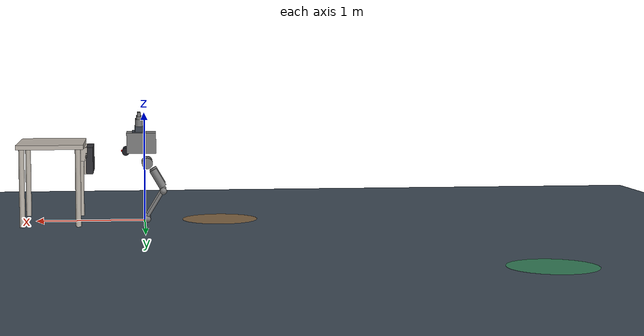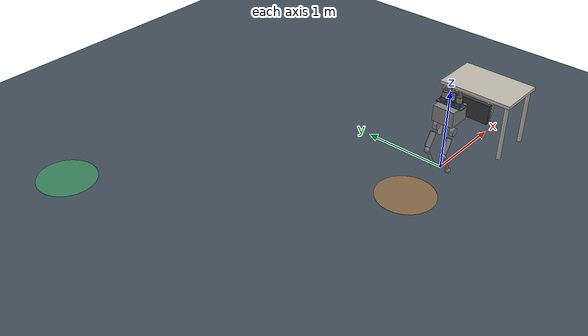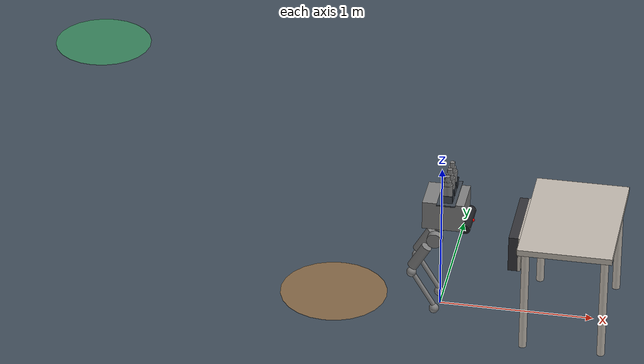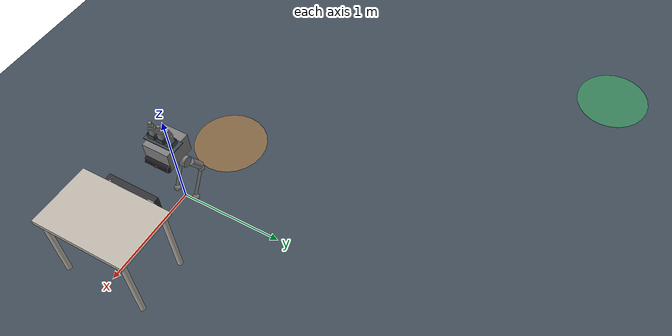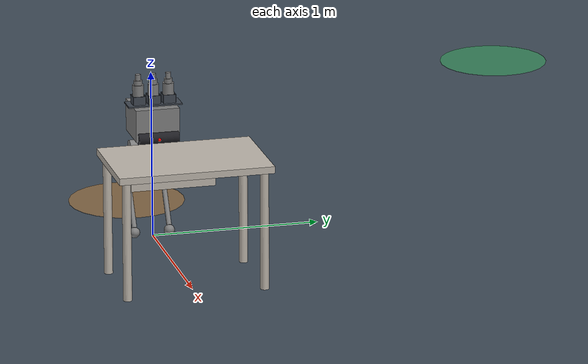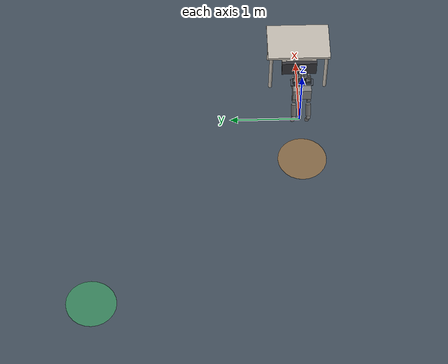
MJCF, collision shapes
<mujoco model="phase01_u02_unit_tron1_payload">

  <!-- 1. 컴파일러 설정: 각도 라디안, STL 및 OBJ 메쉬 경로 탐색 -->
  <compiler angle="radian" coordinate="local" meshdir="../model_ori/PF_TRON1A/meshes/" autolimits="true"/>

  <size njmax="1500" nconmax="400"/>

  <!-- 2. 전역 물리 옵션 (dt=0.001s, 고속 안정 적분기, 타원 마찰 원뿔) -->
  <option timestep="0.001" gravity="0 0 -9.81" integrator="implicitfast" cone="elliptic">
    <flag contact="enable"/>
  </option>

  <!-- 3. 뷰어 및 시각화 기본 설정 -->
  <visual>
    <global offwidth="640" offheight="480" azimuth="135" elevation="-20"/>
    <quality shadowsize="2048" offsamples="4"/>
    <rgba com="0.2 0.8 0.2 0.6" contactforce="0.8 0.2 0.2 0.8"/>
    <scale com="0.1" forcewidth="0.04" contactwidth="0.08"/>
  </visual>

  <!-- 4. 공통 에셋 (텍스처, 재질, 3D 메쉬) -->
  <asset>
    <!-- 하늘 배경 및 바닥 격자 체크 텍스처 -->
    <texture type="skybox" builtin="gradient" rgb1="0.3 0.5 0.7" rgb2="0 0 0" width="512" height="512"/>
    <texture name="texplane" type="2d" builtin="checker" rgb1="0.2 0.25 0.3" rgb2="0.3 0.35 0.4"
             width="512" height="512" mark="cross" markrgb="0.8 0.8 0.8"/>
    <material name="matplane" texture="texplane" texrepeat="5 5" texuniform="true" reflectance="0.1"/>

    <!-- Tron1 STL 메쉬 에셋 -->
    <mesh name="base_Link" file="base_Link.STL"/>
    <mesh name="abad_L_Link" file="abad_L_Link.STL"/>
    <mesh name="hip_L_Link" file="hip_L_Link.STL"/>
    <mesh name="knee_L_Link" file="knee_L_Link.STL"/>
    <mesh name="foot_L_Link" file="foot_L_Link.STL"/>
    <mesh name="abad_R_Link" file="abad_R_Link.STL"/>
    <mesh name="hip_R_Link" file="hip_R_Link.STL"/>
    <mesh name="knee_R_Link" file="knee_R_Link.STL"/>
    <mesh name="foot_R_Link" file="foot_R_Link.STL"/>

    <!-- 물병 3D 메쉬 에셋 (OBJ) -->
    <mesh name="bottle_mesh" file="../../bottle/bottle.obj"/>

    <!-- 재질 정의 -->
    <material name="robot_body_mat" rgba="0.82 0.85 0.90 1.0" specular="0.6" shininess="0.4"/>
    <material name="robot_dark_mat" rgba="0.2 0.2 0.22 1.0" specular="0.4" shininess="0.3"/>
    <material name="tray_mat" rgba="0.25 0.28 0.32 1.0" specular="0.5" shininess="0.4"/>
    <material name="bumper_mat" rgba="0.12 0.12 0.14 1.0" specular="0.2" shininess="0.1"/>
    <material name="table_mat" rgba="0.75 0.72 0.68 1.0" specular="0.3" shininess="0.2"/>
    <material name="ledge_mat" rgba="0.2 0.2 0.22 1.0" specular="0.4" shininess="0.3"/>

    <!-- 물병 색상 (식별을 위한 미세 색상 차이 부여) -->
    <material name="bottle_mat_1" rgba="0.3 0.6 0.9 0.85" specular="0.7" shininess="0.6"/> <!-- Slot L: Blue -->
    <material name="bottle_mat_2" rgba="0.3 0.85 0.5 0.85" specular="0.7" shininess="0.6"/> <!-- Slot C: Green -->
    <material name="bottle_mat_3" rgba="0.95 0.6 0.2 0.85" specular="0.7" shininess="0.6"/> <!-- Slot R: Orange -->
  </asset>

  <!-- 5. 기본 충돌/시각 클래스 정의 -->
  <default>
    <default class="visual">
      <geom contype="0" conaffinity="0" group="2" type="mesh"/>
    </default>
    <default class="collision">
      <geom contype="1" conaffinity="1" condim="3" group="3" friction="1.0 0.005 0.0001"/>
    </default>
    <!-- 외형 시각화 및 물리 충돌을 동시에 수행하는 프롭용 클래스 (Group 0: 기본 뷰어 렌더링) -->
    <default class="prop_geom">
      <geom contype="1" conaffinity="1" condim="3" group="0" friction="1.0 0.005 0.0001"/>
    </default>
    <default class="bottle_collision">
      <geom contype="1" conaffinity="1" condim="4" group="3" friction="1.2 0.005 0.0001"/>
    </default>
    <default class="bumper_collision">
      <geom contype="1" conaffinity="1" condim="3" friction="1.5 0.01 0.001"
            solref="0.04 1" solimp="0.8 0.95 0.001 0.5 2"/>
    </default>
    <joint armature="0.02" damping="0.05" limited="true"/>
  </default>

  <!-- 6. 월드 바디: 조명, 바닥, 도킹 테이블, Tron1 및 물병 -->
  <worldbody>
    <!-- 광원 -->
    <light directional="true" pos="0 0 5" dir="0 0 -1" diffuse="0.8 0.8 0.8" castshadow="true"/>
    <light directional="false" pos="3 -3 3" dir="-1 1 -1" diffuse="0.4 0.4 0.4"/>

    <!-- 기준 바닥 평면 -->
    <geom name="floor" type="plane" size="0 0 0.05" material="matplane"
          contype="1" conaffinity="1" friction="1.0 0.005 0.02" condim="6"/>

    <!-- 카메라 시점 -->
    <camera name="overview_cam" pos="2.4 -2.6 1.8" xyaxes="0.75 0.66 0.0 -0.25 0.28 0.92" fovy="45"/>
    <camera name="docking_cam" pos="1.2 -1.2 1.0" xyaxes="0.707 0.707 0 -0.408 0.408 0.816" fovy="45"/>
    <camera name="track_cam" mode="trackcom" pos="0 -2.4 1.2" xyaxes="1 0 0 0 0.5 0.86" fovy="50"/>
    <camera name="wide_cam" pos="1.5 -8.0 7.5" xyaxes="0.95 0.31 0.0 -0.15 0.47 0.87" fovy="55"/>

    <!-- 1차 경유지 목표 마커 (X=-3.0, Y=3.0, 반투명 그린) -->
    <geom name="wp1_marker" type="cylinder" pos="-3.0 3.0 0.002" size="0.35 0.002"
          rgba="0.2 0.85 0.4 0.4" contype="0" conaffinity="0" group="1"/>

    <!-- 2차 경유지 목표 마커: 도킹 1m 전 정렬 지점 (X=-0.70, Y=0.0, 반투명 오렌지) -->
    <geom name="wp2_marker" type="cylinder" pos="-0.70 0.0 0.002" size="0.35 0.002"
          rgba="0.95 0.6 0.2 0.4" contype="0" conaffinity="0" group="1"/>

    <!-- ==================== 도킹 스테이션 테이블 (pos="0.55 0 0") ==================== -->
    <body name="docking_station" pos="0.55 0 0">
      <!-- 1. 표준 테이블 상판 (두께 4cm, 상면 높이 z = 0.74m: UR5e 작업대 표준 규격 원복) -->
      <geom name="table_top" type="box" pos="0.30 0 0.72" size="0.30 0.45 0.02" material="table_mat" class="prop_geom"/>

      <!-- 2. 테이블 지지 다리 4개 (높이 0.70m) -->
      <geom name="table_leg1" type="cylinder" pos="0.05  0.40 0.35" size="0.025 0.35" material="table_mat" class="prop_geom"/>
      <geom name="table_leg2" type="cylinder" pos="0.05 -0.40 0.35" size="0.025 0.35" material="table_mat" class="prop_geom"/>
      <geom name="table_leg3" type="cylinder" pos="0.55  0.40 0.35" size="0.025 0.35" material="table_mat" class="prop_geom"/>
      <geom name="table_leg4" type="cylinder" pos="0.55 -0.40 0.35" size="0.025 0.35" material="table_mat" class="prop_geom"/>

      <!-- 3. 언더데스크 하향 드롭 브래킷 프레임 (상판 하단 z=0.70m에서 현수 고정) -->
      <geom name="dock_hanger_L" type="box" pos="0.0  0.22 0.64" size="0.03 0.03 0.06" material="table_mat" class="prop_geom"/>
      <geom name="dock_hanger_R" type="box" pos="0.0 -0.22 0.64" size="0.03 0.03 0.06" material="table_mat" class="prop_geom"/>
      <geom name="dock_backing_plate" type="box" pos="-0.01 0 0.58" size="0.01 0.25 0.12" material="table_mat" class="prop_geom"/>

      <!--
        4. 도킹 완충 패드 및 터치 접촉 턱 (Docking Ledge)
        - 중심 높이 z = 0.58m (상하 범위 0.46m ~ 0.70m, 상판 하단과 일체화 결합)
        - Tron1 저중심 범퍼(z ≈ 0.56~0.60m)를 정확히 수용하여 전복 토크(τ=0) 차단
      -->
      <geom name="table_bumper_ledge" type="box" pos="-0.05 0 0.58" size="0.03 0.25 0.12"
            material="ledge_mat" class="bumper_collision"/>
    </body>

    <!-- ==================== TRON1 로봇 본체 (pos="0 0 0.80") ==================== -->
    <body name="base_Link" pos="0 0 0.80">
      <freejoint name="root_joint"/>

      <!-- 상체 관성 파라미터 (본체: 9.595kg) -->
      <inertial pos="0.0457 0.0001 -0.1638" quat="0.9725 -0.0061 -0.2324 0.0039"
                mass="9.595" diaginertia="0.1547 0.1109 0.0846"/>
      <site name="imu_site" pos="0 0 0"/>
      <geom class="visual" mesh="base_Link" material="robot_body_mat"/>
      <geom name="base_col" type="box" size="0.135 0.13 0.095" pos="0.03 0 -0.072" class="collision"/>

      <body name="tray_assembly" pos="0.05 0 0.025">
        <!-- 트레이 바닥 지지판 (두께 8mm, 전후 12cm, 좌우 32cm) -->
        <geom name="tray_base" type="box" pos="0 0 0.004" size="0.06 0.16 0.004"
              material="tray_mat" class="prop_geom"/>
        <site name="tray_center_site" pos="0 0 0.01" size="0.008" rgba="1 1 0 1"/>

        <!-- Slot 1 (좌측, Slot L: y = +0.09m) - 4면 가이드 림 벽체 (높이 50mm 견고한 지지) -->
        <geom name="slot_L_wall_f" type="box" pos=" 0.036 0.09 0.033" size="0.002 0.036 0.025" material="tray_mat" class="prop_geom"/>
        <geom name="slot_L_wall_b" type="box" pos="-0.036 0.09 0.033" size="0.002 0.036 0.025" material="tray_mat" class="prop_geom"/>
        <geom name="slot_L_wall_l" type="box" pos=" 0 0.126 0.033" size="0.036 0.002 0.025" material="tray_mat" class="prop_geom"/>
        <geom name="slot_L_wall_r" type="box" pos=" 0 0.054 0.033" size="0.036 0.002 0.025" material="tray_mat" class="prop_geom"/>
        <site name="slot_L_site" pos="0 0.09 0.01" size="0.005" rgba="0 0 1 1"/>

        <!-- Slot 2 (중앙, Slot C: y = 0.00m) - 4면 가이드 림 벽체 -->
        <geom name="slot_C_wall_f" type="box" pos=" 0.036 0.00 0.033" size="0.002 0.036 0.025" material="tray_mat" class="prop_geom"/>
        <geom name="slot_C_wall_b" type="box" pos="-0.036 0.00 0.033" size="0.002 0.036 0.025" material="tray_mat" class="prop_geom"/>
        <geom name="slot_C_wall_l" type="box" pos=" 0 0.036 0.033" size="0.036 0.002 0.025" material="tray_mat" class="prop_geom"/>
        <geom name="slot_C_wall_r" type="box" pos=" 0 -0.036 0.033" size="0.036 0.002 0.025" material="tray_mat" class="prop_geom"/>
        <site name="slot_C_site" pos="0 0.00 0.01" size="0.005" rgba="0 1 0 1"/>

        <!-- Slot 3 (우측, Slot R: y = -0.09m) - 4면 가이드 림 벽체 -->
        <geom name="slot_R_wall_f" type="box" pos=" 0.036 -0.09 0.033" size="0.002 0.036 0.025" material="tray_mat" class="prop_geom"/>
        <geom name="slot_R_wall_b" type="box" pos="-0.036 -0.09 0.033" size="0.002 0.036 0.025" material="tray_mat" class="prop_geom"/>
        <geom name="slot_R_wall_l" type="box" pos=" 0 -0.054 0.033" size="0.036 0.002 0.025" material="tray_mat" class="prop_geom"/>
        <geom name="slot_R_wall_r" type="box" pos=" 0 -0.126 0.033" size="0.036 0.002 0.025" material="tray_mat" class="prop_geom"/>
        <site name="slot_R_site" pos="0 -0.09 0.01" size="0.005" rgba="1 0.5 0 1"/>
      </body>

      <!--
        [2. 상체 전면 완충 범퍼 조립체 (Front Bumper Assembly)]
        - base_Link 전면 돌출 배치 (pos="0.17 0 -0.15", 10cm 하향)
        - 고마찰 완충 고무 재질 실린더 (테이블 도킹 레지와 밀착 시 3점 지지 정적 평형 확립)
      -->
      <body name="bumper_assembly" pos="0.17 0 -0.15">
        <geom name="front_bumper_col" type="cylinder" pos="0 0 0" euler="1.5708 0 0"
              size="0.035 0.12" material="bumper_mat" class="bumper_collision"/>
        <site name="bumper_site" pos="0.035 0 0" size="0.01" rgba="1 0 0 1"/>
      </body>

      <!-- ==================== LEFT LEG ==================== -->
      <body name="abad_L_Link" pos="0.05556 0.105 -0.2602">
        <inertial pos="-0.0697 0.0447 0.0005" quat="0.595 0.579 0.394 0.393" mass="1.469" diaginertia="0.0025 0.0020 0.0013"/>
        <joint name="abad_L_Joint" axis="1 0 0" range="-0.38 1.39"/>
        <geom class="visual" mesh="abad_L_Link" material="robot_body_mat"/>
        <geom name="abad_L_col" type="cylinder" pos="-0.08 0 0" euler="1.57 0 0" size="0.05 0.025" class="collision"/>

        <body name="hip_L_Link" pos="-0.077 0.0205 0">
          <inertial pos="-0.0286 -0.0477 -0.0399" quat="0.853 0.192 0.226 0.426" mass="2.3" diaginertia="0.0233 0.0230 0.0027"/>
          <joint name="hip_L_Joint" axis="0 1 0" range="-1.01 1.39"/>
          <geom class="visual" mesh="hip_L_Link" material="robot_dark_mat"/>
          <geom name="hip_L_col" type="cylinder" pos="-0.1 -0.02 -0.14" euler="0 0.53 0" size="0.035 0.09" class="collision"/>

          <body name="knee_L_Link" pos="-0.15 -0.0205 -0.25981">
            <inertial pos="0.0516 0.0015 -0.0814" quat="0.668 -0.202 -0.199 0.687" mass="0.55" diaginertia="0.0041 0.0041 0.0001"/>
            <joint name="knee_L_Joint" axis="0 -1 0" range="-0.87 1.36"/>
            <geom class="visual" mesh="knee_L_Link" material="robot_body_mat"/>
            <geom name="knee_L_col" type="cylinder" pos="0.078 0 -0.12" euler="0 -0.55 0" size="0.015 0.13" class="collision"/>
            <geom name="knee_L_cap_col" type="sphere" pos="0 0 0" size="0.032" class="collision"/>

            <geom class="visual" pos="0.150 0 -0.2598" mesh="foot_L_Link" material="robot_dark_mat"/>
            <geom name="foot_L_col" type="sphere" pos="0.150 0 -0.2598" size="0.032" class="collision"
                  friction="1.2 0.005 0.02" condim="6" solref="0.004 1" solimp="0.9 0.99 0.001 0.5 2"/>
            <site name="foot_L_site" pos="0.150 0 -0.2598" size="0.01" rgba="1 0 0 1"/>
          </body>
        </body>
      </body>

      <!-- ==================== RIGHT LEG ==================== -->
      <body name="abad_R_Link" pos="0.05556 -0.105 -0.2602">
        <inertial pos="-0.0697 -0.0447 0.0005" quat="0.393 0.394 0.579 0.595" mass="1.469" diaginertia="0.0025 0.0020 0.0013"/>
        <joint name="abad_R_Joint" axis="1 0 0" range="-1.39 0.38"/>
        <geom class="visual" mesh="abad_R_Link" material="robot_body_mat"/>
        <geom name="abad_R_col" type="cylinder" pos="-0.08 0 0" euler="1.57 0 0" size="0.05 0.025" class="collision"/>

        <body name="hip_R_Link" pos="-0.077 -0.0205 0">
          <inertial pos="-0.0286 0.0477 -0.0399" quat="0.426 0.226 0.192 0.853" mass="2.3" diaginertia="0.0233 0.0230 0.0027"/>
          <joint name="hip_R_Joint" axis="0 -1 0" range="-1.39 1.01"/>
          <geom class="visual" mesh="hip_R_Link" material="robot_dark_mat"/>
          <geom name="hip_R_col" type="cylinder" pos="-0.10 0.025 -0.14" euler="0 0.53 0" size="0.035 0.09" class="collision"/>

          <body name="knee_R_Link" pos="-0.15 0.0205 -0.25981">
            <inertial pos="0.0516 -0.0015 -0.0814" quat="0.687 -0.199 -0.202 0.668" mass="0.55" diaginertia="0.0041 0.0041 0.0001"/>
            <joint name="knee_R_Joint" axis="0 1 0" range="-1.36 0.87"/>
            <geom class="visual" mesh="knee_R_Link" material="robot_body_mat"/>
            <geom name="knee_R_col" type="cylinder" pos="0.078 0 -0.12" euler="0 -0.55 0" size="0.015 0.13" class="collision"/>
            <geom name="knee_R_cap_col" type="sphere" pos="0 0 0" size="0.032" class="collision"/>

            <geom class="visual" pos="0.150 0 -0.2598" mesh="foot_R_Link" material="robot_dark_mat"/>
            <geom name="foot_R_col" type="sphere" pos="0.150 0 -0.2598" size="0.032" class="collision"
                  friction="1.2 0.005 0.02" condim="6" solref="0.004 1" solimp="0.9 0.99 0.001 0.5 2"/>
            <site name="foot_R_site" pos="0.150 0 -0.2598" size="0.01" rgba="0 0 1 1"/>
          </body>
        </body>
      </body>
    </body>

    <!-- ==================== 물병 1 (Slot L: 좌측 적재) ==================== -->
    <body name="bottle_1" pos="0.05 0.09 0.835">
      <freejoint name="bottle_1_joint"/>
      <inertial pos="0 0 0.075" mass="0.15" diaginertia="0.0004 0.0004 0.00015"/>
      <geom name="bottle_1_vis" type="mesh" mesh="bottle_mesh" material="bottle_mat_1"
            contype="0" conaffinity="0" group="1"/>
      <geom name="bottle_1_col_body" class="bottle_collision" type="cylinder" pos="0 0 0.058" size="0.033 0.055"/>
      <geom name="bottle_1_col_shoulder" class="bottle_collision" type="cylinder" pos="0 0 0.125" size="0.024 0.015"/>
      <geom name="bottle_1_col_neck" class="bottle_collision" type="cylinder" pos="0 0 0.1575" size="0.0155 0.0175"/>
    </body>

    <!-- ==================== 물병 2 (Slot C: 중앙 적재) ==================== -->
    <body name="bottle_2" pos="0.05 0.00 0.835">
      <freejoint name="bottle_2_joint"/>
      <inertial pos="0 0 0.075" mass="0.15" diaginertia="0.0004 0.0004 0.00015"/>
      <geom name="bottle_2_vis" type="mesh" mesh="bottle_mesh" material="bottle_mat_2"
            contype="0" conaffinity="0" group="1"/>
      <geom name="bottle_2_col_body" class="bottle_collision" type="cylinder" pos="0 0 0.058" size="0.033 0.055"/>
      <geom name="bottle_2_col_shoulder" class="bottle_collision" type="cylinder" pos="0 0 0.125" size="0.024 0.015"/>
      <geom name="bottle_2_col_neck" class="bottle_collision" type="cylinder" pos="0 0 0.1575" size="0.0155 0.0175"/>
    </body>

    <!-- ==================== 물병 3 (Slot R: 우측 적재) ==================== -->
    <body name="bottle_3" pos="0.05 -0.09 0.835">
      <freejoint name="bottle_3_joint"/>
      <inertial pos="0 0 0.075" mass="0.15" diaginertia="0.0004 0.0004 0.00015"/>
      <geom name="bottle_3_vis" type="mesh" mesh="bottle_mesh" material="bottle_mat_3"
            contype="0" conaffinity="0" group="1"/>
      <geom name="bottle_3_col_body" class="bottle_collision" type="cylinder" pos="0 0 0.058" size="0.033 0.055"/>
      <geom name="bottle_3_col_shoulder" class="bottle_collision" type="cylinder" pos="0 0 0.125" size="0.024 0.015"/>
      <geom name="bottle_3_col_neck" class="bottle_collision" type="cylinder" pos="0 0 0.1575" size="0.0155 0.0175"/>
    </body>
  </worldbody>

  <!-- 7. 액추에이터 정의: 6개 모터 직접 토크 제어 (LimX 공식 규격: [-80, 80] Nm) -->
  <actuator>
    <motor name="abad_L_motor" joint="abad_L_Joint" gear="1" ctrllimited="true" ctrlrange="-80 80"/>
    <motor name="hip_L_motor"  joint="hip_L_Joint"  gear="1" ctrllimited="true" ctrlrange="-80 80"/>
    <motor name="knee_L_motor" joint="knee_L_Joint" gear="1" ctrllimited="true" ctrlrange="-80 80"/>
    <motor name="abad_R_motor" joint="abad_R_Joint" gear="1" ctrllimited="true" ctrlrange="-80 80"/>
    <motor name="hip_R_motor"  joint="hip_R_Joint"  gear="1" ctrllimited="true" ctrlrange="-80 80"/>
    <motor name="knee_R_motor" joint="knee_R_Joint" gear="1" ctrllimited="true" ctrlrange="-80 80"/>
  </actuator>

  <!-- 8. 센서 정의: IMU, 관절 엔코더 및 전면 범퍼 터치 센서 -->
  <sensor>
    <framequat name="imu_quat" objtype="site" objname="imu_site"/>
    <gyro name="imu_gyro" site="imu_site"/>
    <accelerometer name="imu_acc" site="imu_site"/>
    <touch name="bumper_touch" site="bumper_site"/>
    <jointpos name="pos_abad_L" joint="abad_L_Joint"/>
    <jointpos name="pos_hip_L"  joint="hip_L_Joint"/>
    <jointpos name="pos_knee_L" joint="knee_L_Joint"/>
    <jointpos name="pos_abad_R" joint="abad_R_Joint"/>
    <jointpos name="pos_hip_R"  joint="hip_R_Joint"/>
    <jointpos name="pos_knee_R" joint="knee_R_Joint"/>
    <jointvel name="vel_abad_L" joint="abad_L_Joint"/>
    <jointvel name="vel_hip_L"  joint="hip_L_Joint"/>
    <jointvel name="vel_knee_L" joint="knee_L_Joint"/>
    <jointvel name="vel_abad_R" joint="abad_R_Joint"/>
    <jointvel name="vel_hip_R"  joint="hip_R_Joint"/>
    <jointvel name="vel_knee_R" joint="knee_R_Joint"/>
  </sensor>

  <!-- 9. 기본 안정 기립 키프레임 -->
  <keyframe>
    <!-- Tron1 직립 스폰 자세 및 물병 3개 트레이 적재 기본 상태 -->
    <key name="stand" qpos="
      -5 -4 0.80 1 0 0 0 0.0 0.0 0.0 0.0 0.0 0.0
      -4.95  -3.91 0.835 1 0 0 0
      -4.95  -4.00 0.835 1 0 0 0
      -4.95 -4.09 0.835 1 0 0 0
    "/>
  </keyframe>
</mujoco>
